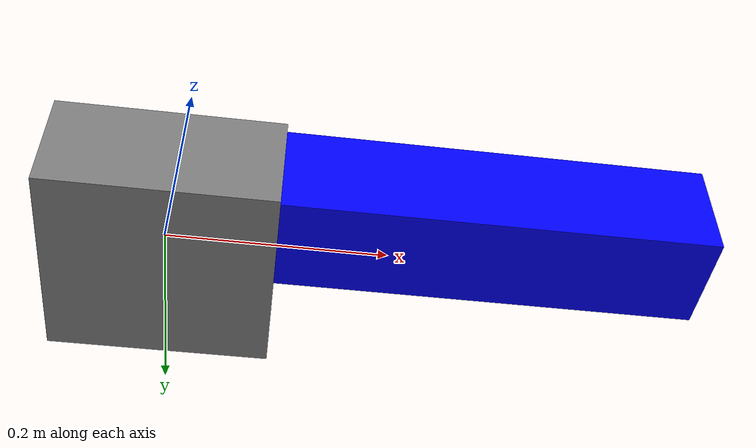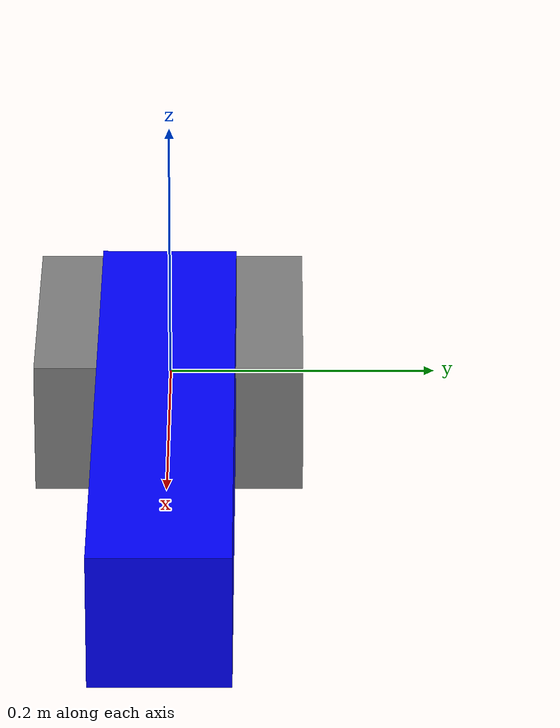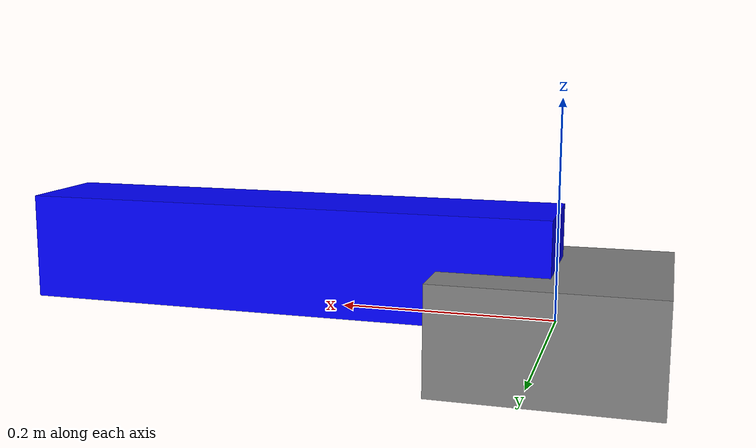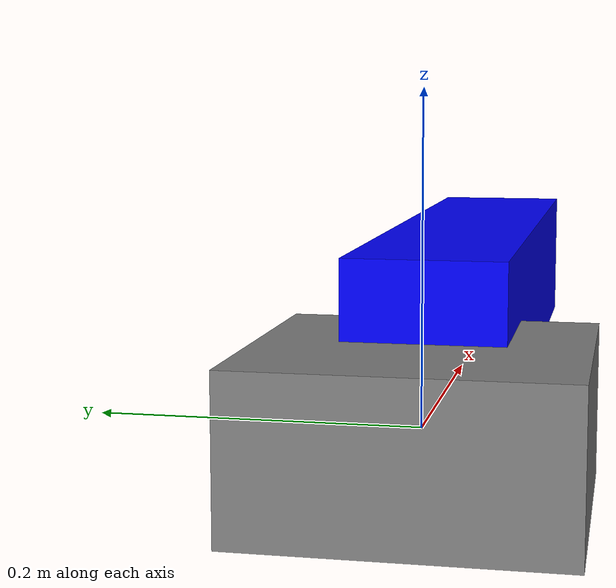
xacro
<?xml version="1.0"?>
<robot name="simple_arm" xmlns:xacro="http://www.ros.org/wiki/xacro">

  <link name="base_link">
    <visual>
      <geometry><box size="0.2 0.2 0.1"/></geometry>
      <material name="grey"><color rgba="0.5 0.5 0.5 1"/></material>
    </visual>
  </link>

  <link name="arm_link_1">
    <visual>
      <geometry><box size="0.5 0.1 0.1"/></geometry>
      <origin xyz="0.25 0 0" rpy="0 0 0"/>
      <material name="blue"><color rgba="0 0 1 1"/></material>
    </visual>
  </link>

  <joint name="base_to_arm_1" type="revolute">
    <parent link="base_link"/>
    <child link="arm_link_1"/>
    <origin xyz="0 0 0.05" rpy="0 0 0"/>
    <axis xyz="0 0 1"/>
    <limit lower="-3.14" upper="3.14" velocity="1.0" effort="10.0"/>
  </joint>

</robot>
